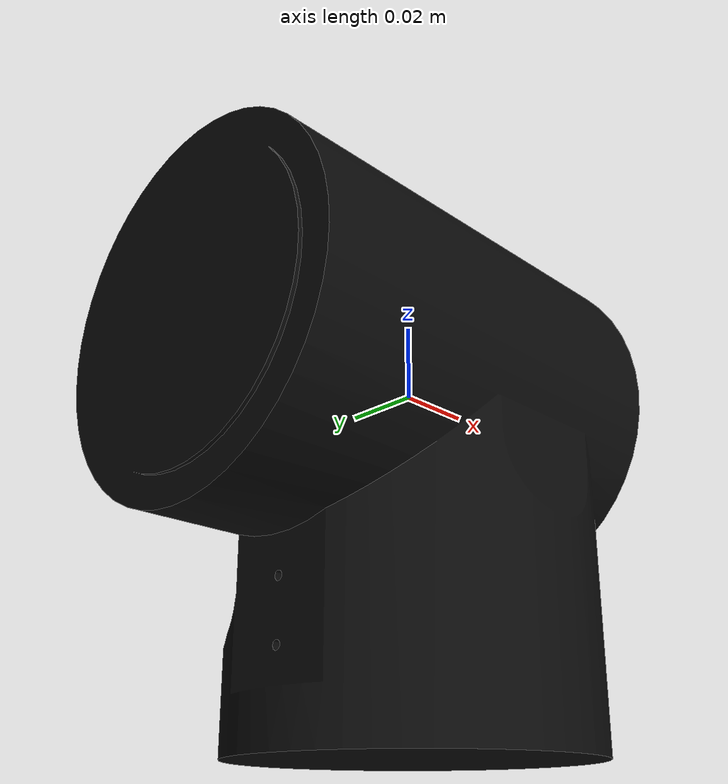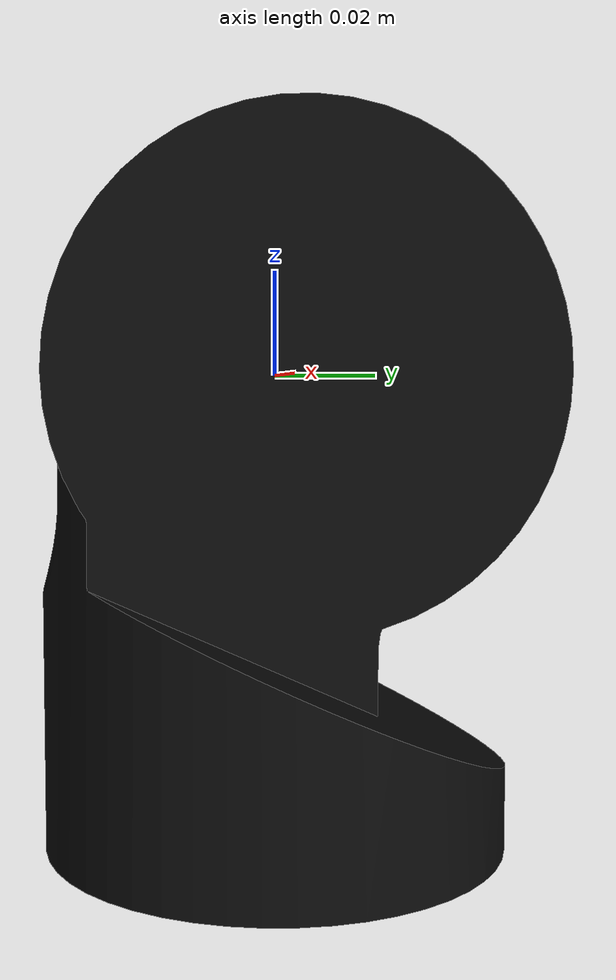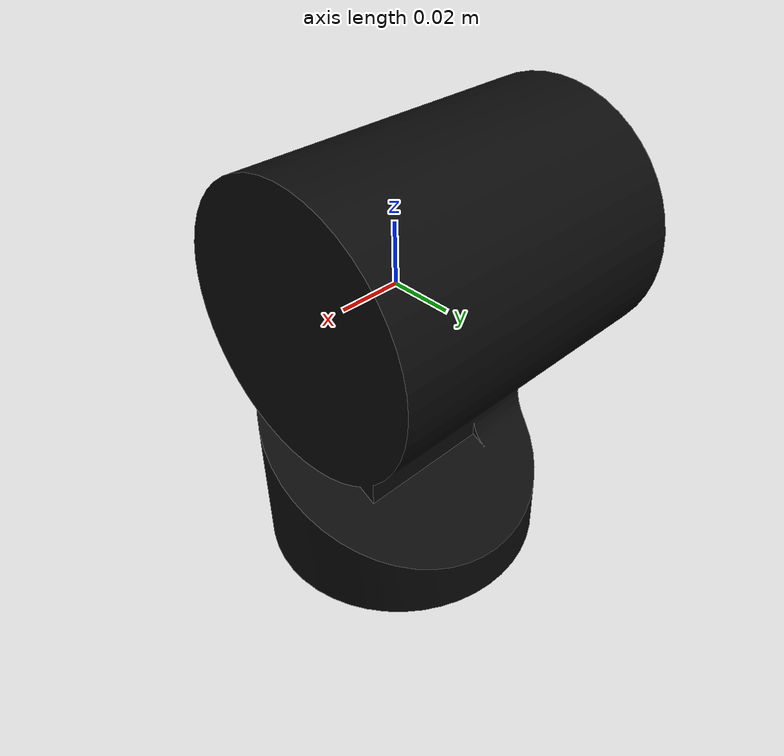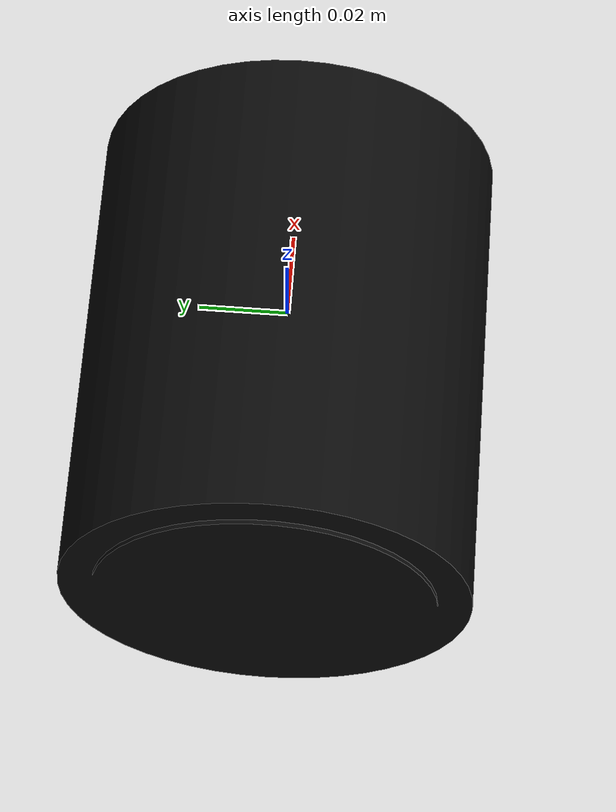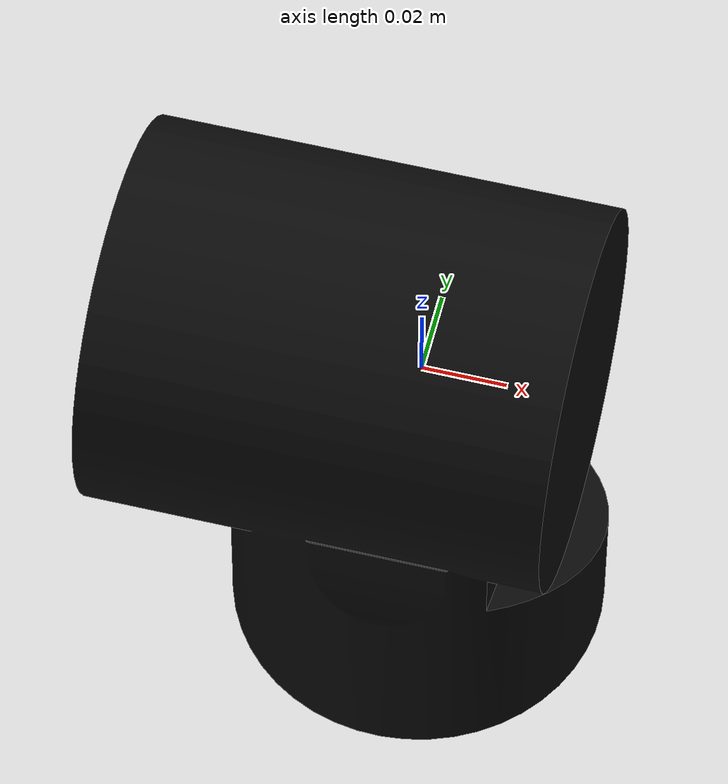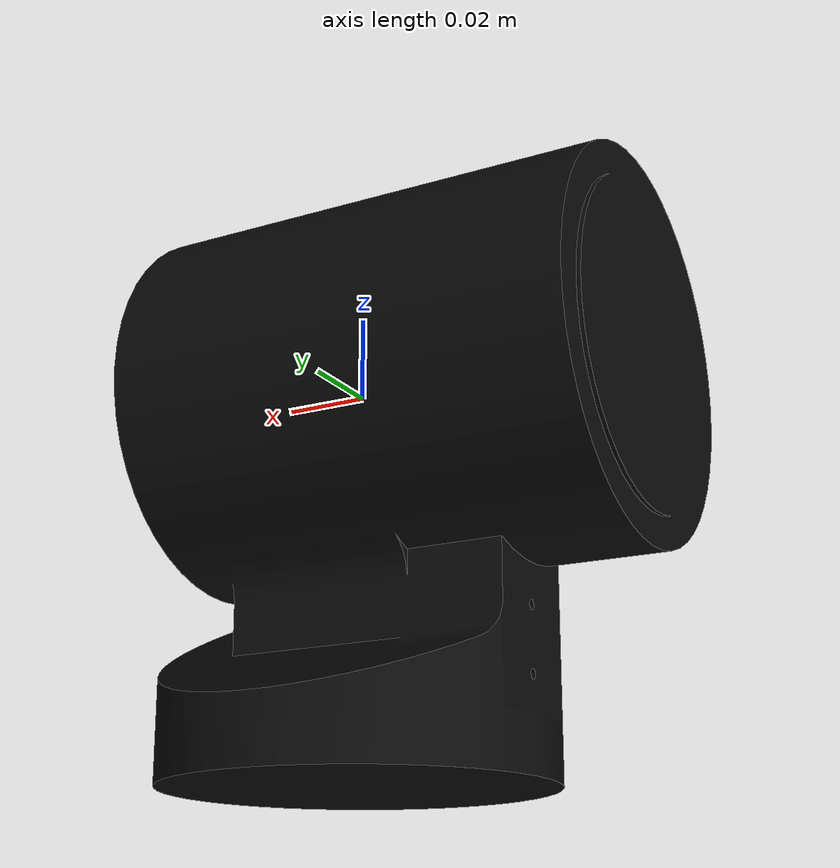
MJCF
<mujoco model="LINK_8">
  <default>
    <default class="visual">
      <geom group="2" type="mesh" contype="0" conaffinity="0"/>
    </default>
    <default class="collision">
      <geom group="3" type="mesh"/>
    </default>
  </default>
  <asset>
    <material name="10,10,10" specular="0.039216" shininess="1.0" rgba="0.039216 0.039216 0.039216 1.000000"/>
    <mesh file="LINK_8.obj"/>
    <mesh file="LINK_8_collision_0.obj"/>
    <mesh file="LINK_8_collision_1.obj"/>
    <mesh file="LINK_8_collision_2.obj"/>
    <mesh file="LINK_8_collision_3.obj"/>
    <mesh file="LINK_8_collision_4.obj"/>
    <mesh file="LINK_8_collision_5.obj"/>
    <mesh file="LINK_8_collision_6.obj"/>
    <mesh file="LINK_8_collision_7.obj"/>
    <mesh file="LINK_8_collision_8.obj"/>
    <mesh file="LINK_8_collision_9.obj"/>
    <mesh file="LINK_8_collision_10.obj"/>
    <mesh file="LINK_8_collision_11.obj"/>
    <mesh file="LINK_8_collision_12.obj"/>
    <mesh file="LINK_8_collision_13.obj"/>
  </asset>
  <worldbody>
    <body name="LINK_8">
      <geom material="10,10,10" mesh="LINK_8" class="visual"/>
      <geom mesh="LINK_8_collision_0" rgba="0.39660264760740205 0.7233466660246582 0.7900901059604064 1" class="collision"/>
      <geom mesh="LINK_8_collision_1" rgba="0.9459772325383906 0.5964193438290687 0.8647398861349386 1" class="collision"/>
      <geom mesh="LINK_8_collision_2" rgba="0.4328421722702772 0.5079486183935179 0.5663782491321822 1" class="collision"/>
      <geom mesh="LINK_8_collision_3" rgba="0.9043398340751755 0.5100190386142617 0.9811436075773542 1" class="collision"/>
      <geom mesh="LINK_8_collision_4" rgba="0.7433825638064482 0.22502468684967858 0.9292804130853533 1" class="collision"/>
      <geom mesh="LINK_8_collision_5" rgba="0.7544145423914059 0.22902545305418254 0.1940169896180134 1" class="collision"/>
      <geom mesh="LINK_8_collision_6" rgba="0.5439336171626229 0.06740624640053039 0.21048468878972437 1" class="collision"/>
      <geom mesh="LINK_8_collision_7" rgba="0.3772431177796718 0.9942084437890326 0.07920648979108524 1" class="collision"/>
      <geom mesh="LINK_8_collision_8" rgba="0.6298468823517579 0.3031685027980673 0.7130210094444049 1" class="collision"/>
      <geom mesh="LINK_8_collision_9" rgba="0.6846723239507557 0.4857820330523015 0.7599383981993725 1" class="collision"/>
      <geom mesh="LINK_8_collision_10" rgba="0.5701202368783973 0.5386320356898834 0.8982606471866657 1" class="collision"/>
      <geom mesh="LINK_8_collision_11" rgba="0.9071794119181037 0.12533702794210233 0.06600929427470803 1" class="collision"/>
      <geom mesh="LINK_8_collision_12" rgba="0.14259661848661753 0.4731397091066578 0.06686556858941117 1" class="collision"/>
      <geom mesh="LINK_8_collision_13" rgba="0.5976872684140735 0.6887312916688259 0.9562227334274543 1" class="collision"/>
    </body>
  </worldbody>
</mujoco>
